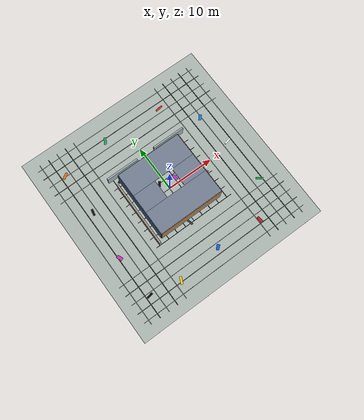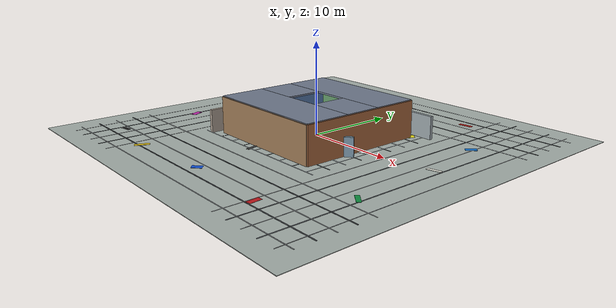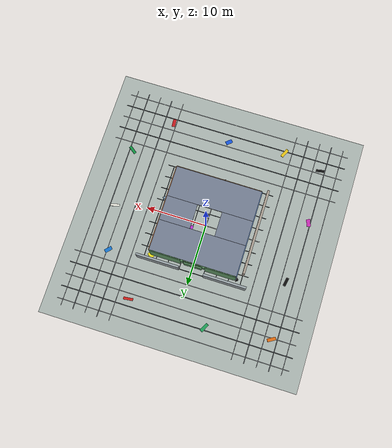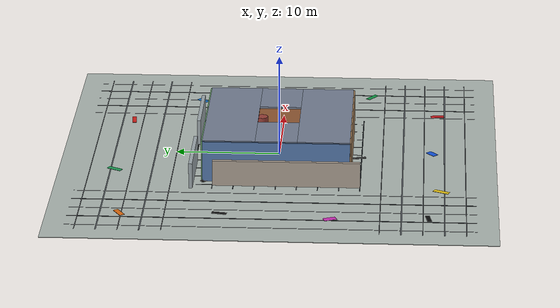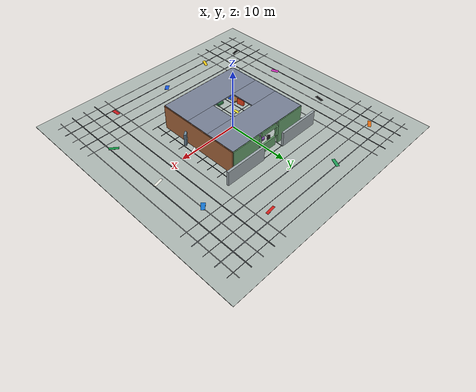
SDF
<sdf version="1.10">
 <world name="low_indoor_apm_rgbd_mid360_window">
  <physics name="apm_1ms_physics" type="ignored">
   <max_step_size>0.001</max_step_size>
   <real_time_factor>1.0</real_time_factor>
  </physics>
  <plugin filename="gz-sim-physics-system" name="gz::sim::systems::Physics"/>
  <plugin filename="gz-sim-air-pressure-system" name="gz::sim::systems::AirPressure"/>
  <plugin filename="gz-sim-sensors-system" name="gz::sim::systems::Sensors">
   <render_engine>ogre2</render_engine>
  </plugin>
  <plugin filename="gz-sim-user-commands-system" name="gz::sim::systems::UserCommands"/>
  <plugin filename="gz-sim-scene-broadcaster-system" name="gz::sim::systems::SceneBroadcaster"/>
  <plugin filename="gz-sim-imu-system" name="gz::sim::systems::Imu"/>
  <plugin filename="gz-sim-navsat-system" name="gz::sim::systems::NavSat"/>
  <scene>
   <ambient>0.55 0.55 0.55 1</ambient>
   <background>0.72 0.78 0.86 1</background>
   <grid>false</grid>
   <shadows>true</shadows>
  </scene>
  <spherical_coordinates>
   <latitude_deg>-35.363262</latitude_deg>
   <longitude_deg>149.165237</longitude_deg>
   <elevation>584</elevation>
   <heading_deg>0</heading_deg>
   <surface_model>EARTH_WGS84</surface_model>
  </spherical_coordinates>
  <light name="sun" type="directional">
   <pose>0 0 20 0 0 0</pose>
   <direction>-0.45 0.25 -0.86</direction>
   <diffuse>0.95 0.92 0.86 1</diffuse>
   <specular>0.35 0.35 0.32 1</specular>
  </light>
  <model name="textured_floor">
   <static>true</static>
   <pose>0 0 -0.025 0 0 0</pose>
   <link name="floor_link">
    <collision name="floor_collision"><geometry><box><size>42 42 0.05</size></box></geometry></collision>
    <visual name="floor_visual">
     <geometry><box><size>42 42 0.05</size></box></geometry>
     <material>
      <ambient>0.68 0.72 0.70 1</ambient>
      <diffuse>0.68 0.72 0.70 1</diffuse>
      <specular>0.08 0.08 0.08 1</specular>
     </material>
    </visual>
   </link>
  </model>
  <model name="visible_floor_pattern">
   <static>true</static>
   <link name="pattern_link">
    <visual name="x_grid_-18">
     <pose>-18 0 0.012 0 0 0</pose>
     <geometry><box><size>0.08 38 0.012</size></box></geometry>
     <material><diffuse>0.06 0.07 0.08 1</diffuse></material>
    </visual>
    <visual name="x_grid_-16">
     <pose>-16 0 0.012 0 0 0</pose>
     <geometry><box><size>0.12 38 0.012</size></box></geometry>
     <material><diffuse>0.34 0.36 0.38 1</diffuse></material>
    </visual>
    <visual name="x_grid_-14">
     <pose>-14 0 0.012 0 0 0</pose>
     <geometry><box><size>0.08 38 0.012</size></box></geometry>
     <material><diffuse>0.06 0.07 0.08 1</diffuse></material>
    </visual>
    <visual name="x_grid_-12">
     <pose>-12 0 0.012 0 0 0</pose>
     <geometry><box><size>0.12 38 0.012</size></box></geometry>
     <material><diffuse>0.34 0.36 0.38 1</diffuse></material>
    </visual>
    <visual name="x_grid_-10">
     <pose>-10 0 0.012 0 0 0</pose>
     <geometry><box><size>0.08 38 0.012</size></box></geometry>
     <material><diffuse>0.06 0.07 0.08 1</diffuse></material>
    </visual>
    <visual name="x_grid_-8">
     <pose>-8 0 0.012 0 0 0</pose>
     <geometry><box><size>0.08 16 0.012</size></box></geometry>
     <material><ambient>0.08 0.10 0.12 1</ambient><diffuse>0.08 0.10 0.12 1</diffuse></material>
    </visual>
    <visual name="x_grid_-6">
     <pose>-6 0 0.012 0 0 0</pose>
     <geometry><box><size>0.08 16 0.012</size></box></geometry>
     <material><ambient>0.28 0.30 0.32 1</ambient><diffuse>0.28 0.30 0.32 1</diffuse></material>
    </visual>
    <visual name="x_grid_-4">
     <pose>-4 0 0.012 0 0 0</pose>
     <geometry><box><size>0.08 16 0.012</size></box></geometry>
     <material><ambient>0.08 0.10 0.12 1</ambient><diffuse>0.08 0.10 0.12 1</diffuse></material>
    </visual>
    <visual name="x_grid_-2">
     <pose>-2 0 0.012 0 0 0</pose>
     <geometry><box><size>0.08 16 0.012</size></box></geometry>
     <material><ambient>0.28 0.30 0.32 1</ambient><diffuse>0.28 0.30 0.32 1</diffuse></material>
    </visual>
    <visual name="x_grid_0">
     <pose>0 0 0.012 0 0 0</pose>
     <geometry><box><size>0.10 16 0.012</size></box></geometry>
     <material><ambient>0.02 0.02 0.02 1</ambient><diffuse>0.02 0.02 0.02 1</diffuse></material>
    </visual>
    <visual name="x_grid_2">
     <pose>2 0 0.012 0 0 0</pose>
     <geometry><box><size>0.08 16 0.012</size></box></geometry>
     <material><ambient>0.28 0.30 0.32 1</ambient><diffuse>0.28 0.30 0.32 1</diffuse></material>
    </visual>
    <visual name="x_grid_4">
     <pose>4 0 0.012 0 0 0</pose>
     <geometry><box><size>0.08 16 0.012</size></box></geometry>
     <material><ambient>0.08 0.10 0.12 1</ambient><diffuse>0.08 0.10 0.12 1</diffuse></material>
    </visual>
    <visual name="x_grid_6">
     <pose>6 0 0.012 0 0 0</pose>
     <geometry><box><size>0.08 16 0.012</size></box></geometry>
     <material><ambient>0.28 0.30 0.32 1</ambient><diffuse>0.28 0.30 0.32 1</diffuse></material>
    </visual>
    <visual name="x_grid_8">
     <pose>8 0 0.012 0 0 0</pose>
     <geometry><box><size>0.08 16 0.012</size></box></geometry>
     <material><ambient>0.08 0.10 0.12 1</ambient><diffuse>0.08 0.10 0.12 1</diffuse></material>
    </visual>
    <visual name="x_grid_10">
     <pose>10 0 0.012 0 0 0</pose>
     <geometry><box><size>0.08 38 0.012</size></box></geometry>
     <material><diffuse>0.06 0.07 0.08 1</diffuse></material>
    </visual>
    <visual name="x_grid_12">
     <pose>12 0 0.012 0 0 0</pose>
     <geometry><box><size>0.12 38 0.012</size></box></geometry>
     <material><diffuse>0.34 0.36 0.38 1</diffuse></material>
    </visual>
    <visual name="x_grid_14">
     <pose>14 0 0.012 0 0 0</pose>
     <geometry><box><size>0.08 38 0.012</size></box></geometry>
     <material><diffuse>0.06 0.07 0.08 1</diffuse></material>
    </visual>
    <visual name="x_grid_16">
     <pose>16 0 0.012 0 0 0</pose>
     <geometry><box><size>0.12 38 0.012</size></box></geometry>
     <material><diffuse>0.34 0.36 0.38 1</diffuse></material>
    </visual>
    <visual name="x_grid_18">
     <pose>18 0 0.012 0 0 0</pose>
     <geometry><box><size>0.08 38 0.012</size></box></geometry>
     <material><diffuse>0.06 0.07 0.08 1</diffuse></material>
    </visual>
    <visual name="y_grid_-18">
     <pose>0 -18 0.014 0 0 0</pose>
     <geometry><box><size>38 0.08 0.012</size></box></geometry>
     <material><diffuse>0.05 0.06 0.07 1</diffuse></material>
    </visual>
    <visual name="y_grid_-16">
     <pose>0 -16 0.014 0 0 0</pose>
     <geometry><box><size>38 0.12 0.012</size></box></geometry>
     <material><diffuse>0.32 0.34 0.36 1</diffuse></material>
    </visual>
    <visual name="y_grid_-14">
     <pose>0 -14 0.014 0 0 0</pose>
     <geometry><box><size>38 0.08 0.012</size></box></geometry>
     <material><diffuse>0.05 0.06 0.07 1</diffuse></material>
    </visual>
    <visual name="y_grid_-12">
     <pose>0 -12 0.014 0 0 0</pose>
     <geometry><box><size>38 0.12 0.012</size></box></geometry>
     <material><diffuse>0.32 0.34 0.36 1</diffuse></material>
    </visual>
    <visual name="y_grid_-10">
     <pose>0 -10 0.014 0 0 0</pose>
     <geometry><box><size>38 0.08 0.012</size></box></geometry>
     <material><diffuse>0.05 0.06 0.07 1</diffuse></material>
    </visual>
    <visual name="y_grid_-8">
     <pose>0 -8 0.014 0 0 0</pose>
     <geometry><box><size>18 0.08 0.012</size></box></geometry>
     <material><ambient>0.08 0.10 0.12 1</ambient><diffuse>0.08 0.10 0.12 1</diffuse></material>
    </visual>
    <visual name="y_grid_-6">
     <pose>0 -6 0.014 0 0 0</pose>
     <geometry><box><size>18 0.08 0.012</size></box></geometry>
     <material><ambient>0.30 0.32 0.34 1</ambient><diffuse>0.30 0.32 0.34 1</diffuse></material>
    </visual>
    <visual name="y_grid_-4">
     <pose>0 -4 0.014 0 0 0</pose>
     <geometry><box><size>18 0.08 0.012</size></box></geometry>
     <material><ambient>0.08 0.10 0.12 1</ambient><diffuse>0.08 0.10 0.12 1</diffuse></material>
    </visual>
    <visual name="y_grid_-2">
     <pose>0 -2 0.014 0 0 0</pose>
     <geometry><box><size>18 0.08 0.012</size></box></geometry>
     <material><ambient>0.30 0.32 0.34 1</ambient><diffuse>0.30 0.32 0.34 1</diffuse></material>
    </visual>
    <visual name="y_grid_0">
     <pose>0 0 0.014 0 0 0</pose>
     <geometry><box><size>18 0.10 0.012</size></box></geometry>
     <material><ambient>0.02 0.02 0.02 1</ambient><diffuse>0.02 0.02 0.02 1</diffuse></material>
    </visual>
    <visual name="y_grid_2">
     <pose>0 2 0.014 0 0 0</pose>
     <geometry><box><size>18 0.08 0.012</size></box></geometry>
     <material><ambient>0.30 0.32 0.34 1</ambient><diffuse>0.30 0.32 0.34 1</diffuse></material>
    </visual>
    <visual name="y_grid_4">
     <pose>0 4 0.014 0 0 0</pose>
     <geometry><box><size>18 0.08 0.012</size></box></geometry>
     <material><ambient>0.08 0.10 0.12 1</ambient><diffuse>0.08 0.10 0.12 1</diffuse></material>
    </visual>
    <visual name="y_grid_6">
     <pose>0 6 0.014 0 0 0</pose>
     <geometry><box><size>18 0.08 0.012</size></box></geometry>
     <material><ambient>0.30 0.32 0.34 1</ambient><diffuse>0.30 0.32 0.34 1</diffuse></material>
    </visual>
    <visual name="y_grid_8">
     <pose>0 8 0.014 0 0 0</pose>
     <geometry><box><size>18 0.08 0.012</size></box></geometry>
     <material><ambient>0.08 0.10 0.12 1</ambient><diffuse>0.08 0.10 0.12 1</diffuse></material>
    </visual>
    <visual name="y_grid_10">
     <pose>0 10 0.014 0 0 0</pose>
     <geometry><box><size>38 0.08 0.012</size></box></geometry>
     <material><diffuse>0.05 0.06 0.07 1</diffuse></material>
    </visual>
    <visual name="y_grid_12">
     <pose>0 12 0.014 0 0 0</pose>
     <geometry><box><size>38 0.12 0.012</size></box></geometry>
     <material><diffuse>0.32 0.34 0.36 1</diffuse></material>
    </visual>
    <visual name="y_grid_14">
     <pose>0 14 0.014 0 0 0</pose>
     <geometry><box><size>38 0.08 0.012</size></box></geometry>
     <material><diffuse>0.05 0.06 0.07 1</diffuse></material>
    </visual>
    <visual name="y_grid_16">
     <pose>0 16 0.014 0 0 0</pose>
     <geometry><box><size>38 0.12 0.012</size></box></geometry>
     <material><diffuse>0.32 0.34 0.36 1</diffuse></material>
    </visual>
    <visual name="y_grid_18">
     <pose>0 18 0.014 0 0 0</pose>
     <geometry><box><size>38 0.08 0.012</size></box></geometry>
     <material><diffuse>0.05 0.06 0.07 1</diffuse></material>
    </visual>
    <visual name="blue_patch">
     <pose>-5.2 -5.2 0.022 0 0 0.22</pose>
     <geometry><box><size>1.4 0.9 0.014</size></box></geometry>
     <material><ambient>0.05 0.28 0.85 1</ambient><diffuse>0.05 0.28 0.85 1</diffuse></material>
    </visual>
    <visual name="yellow_patch">
     <pose>3.7 -4.8 0.022 0 0 -0.32</pose>
     <geometry><box><size>1.2 1.1 0.014</size></box></geometry>
     <material><ambient>0.95 0.82 0.08 1</ambient><diffuse>0.95 0.82 0.08 1</diffuse></material>
    </visual>
    <visual name="red_patch">
     <pose>-3.0 3.4 0.022 0 0 0.65</pose>
     <geometry><box><size>1.0 1.5 0.014</size></box></geometry>
     <material><ambient>0.82 0.10 0.08 1</ambient><diffuse>0.82 0.10 0.08 1</diffuse></material>
    </visual>
    <visual name="green_patch">
     <pose>5.3 3.1 0.022 0 0 0.4</pose>
     <geometry><box><size>1.6 0.8 0.014</size></box></geometry>
     <material><ambient>0.05 0.58 0.22 1</ambient><diffuse>0.05 0.58 0.22 1</diffuse></material>
    </visual>
   </link>
  </model>
  <model name="range_facet_ground_relief">
   <static>true</static>
   <link name="relief_link">
    <collision name="relief_0">
     <pose>-5.0 -4.5 0.12 0 0 0.2</pose>
     <geometry><cylinder><radius>0.65</radius><length>0.24</length></cylinder></geometry>
    </collision>
    <visual name="relief_0_v">
     <pose>-5.0 -4.5 0.12 0 0 0.2</pose>
     <geometry><cylinder><radius>0.65</radius><length>0.24</length></cylinder></geometry>
     <material><ambient>0.42 0.30 0.18 1</ambient><diffuse>0.55 0.38 0.20 1</diffuse></material>
    </visual>
    <collision name="relief_1">
     <pose>-2.5 -5.5 0.17 0 0 0.0</pose>
     <geometry><box><size>1.1 0.8 0.34</size></box></geometry>
    </collision>
    <visual name="relief_1_v">
     <pose>-2.5 -5.5 0.17 0 0 0.0</pose>
     <geometry><box><size>1.1 0.8 0.34</size></box></geometry>
     <material><ambient>0.16 0.38 0.25 1</ambient><diffuse>0.20 0.52 0.30 1</diffuse></material>
    </visual>
    <collision name="relief_2">
     <pose>1.8 -4.2 0.09 0 0 0.35</pose>
     <geometry><box><size>1.4 0.7 0.18</size></box></geometry>
    </collision>
    <visual name="relief_2_v">
     <pose>1.8 -4.2 0.09 0 0 0.35</pose>
     <geometry><box><size>1.4 0.7 0.18</size></box></geometry>
     <material><ambient>0.20 0.24 0.48 1</ambient><diffuse>0.28 0.32 0.68 1</diffuse></material>
    </visual>
    <collision name="relief_3">
     <pose>4.5 -2.3 0.14 0 0 -0.2</pose>
     <geometry><cylinder><radius>0.45</radius><length>0.28</length></cylinder></geometry>
    </collision>
    <visual name="relief_3_v">
     <pose>4.5 -2.3 0.14 0 0 -0.2</pose>
     <geometry><cylinder><radius>0.45</radius><length>0.28</length></cylinder></geometry>
     <material><ambient>0.48 0.20 0.18 1</ambient><diffuse>0.68 0.28 0.22 1</diffuse></material>
    </visual>
    <collision name="relief_4">
     <pose>-4.3 2.0 0.15 0 0 0.5</pose>
     <geometry><box><size>1.0 1.0 0.30</size></box></geometry>
    </collision>
    <visual name="relief_4_v">
     <pose>-4.3 2.0 0.15 0 0 0.5</pose>
     <geometry><box><size>1.0 1.0 0.30</size></box></geometry>
     <material><ambient>0.46 0.36 0.12 1</ambient><diffuse>0.62 0.48 0.15 1</diffuse></material>
    </visual>
    <collision name="relief_5">
     <pose>-1.0 4.8 0.11 0 0 0.1</pose>
     <geometry><cylinder><radius>0.55</radius><length>0.22</length></cylinder></geometry>
    </collision>
    <visual name="relief_5_v">
     <pose>-1.0 4.8 0.11 0 0 0.1</pose>
     <geometry><cylinder><radius>0.55</radius><length>0.22</length></cylinder></geometry>
     <material><ambient>0.30 0.18 0.42 1</ambient><diffuse>0.42 0.25 0.58 1</diffuse></material>
    </visual>
    <collision name="relief_6">
     <pose>2.8 4.4 0.19 0 0 -0.4</pose>
     <geometry><box><size>1.2 0.8 0.38</size></box></geometry>
    </collision>
    <visual name="relief_6_v">
     <pose>2.8 4.4 0.19 0 0 -0.4</pose>
     <geometry><box><size>1.2 0.8 0.38</size></box></geometry>
     <material><ambient>0.10 0.38 0.42 1</ambient><diffuse>0.14 0.55 0.60 1</diffuse></material>
    </visual>
    <collision name="relief_7">
     <pose>5.8 1.4 0.13 0 0 0.25</pose>
     <geometry><cylinder><radius>0.50</radius><length>0.26</length></cylinder></geometry>
    </collision>
    <visual name="relief_7_v">
     <pose>5.8 1.4 0.13 0 0 0.25</pose>
     <geometry><cylinder><radius>0.50</radius><length>0.26</length></cylinder></geometry>
     <material><ambient>0.42 0.26 0.10 1</ambient><diffuse>0.60 0.36 0.12 1</diffuse></material>
    </visual>
    <collision name="relief_8">
     <pose>-6.2 5.6 0.16 0 0 0.18</pose>
     <geometry><cylinder><radius>0.58</radius><length>0.32</length></cylinder></geometry>
    </collision>
    <visual name="relief_8_v">
     <pose>-6.2 5.6 0.16 0 0 0.18</pose>
     <geometry><cylinder><radius>0.58</radius><length>0.32</length></cylinder></geometry>
     <material><ambient>0.22 0.42 0.32 1</ambient><diffuse>0.30 0.60 0.42 1</diffuse></material>
    </visual>
    <collision name="relief_9">
     <pose>6.1 5.8 0.20 0 0 -0.28</pose>
     <geometry><box><size>1.3 0.9 0.40</size></box></geometry>
    </collision>
    <visual name="relief_9_v">
     <pose>6.1 5.8 0.20 0 0 -0.28</pose>
     <geometry><box><size>1.3 0.9 0.40</size></box></geometry>
     <material><ambient>0.46 0.28 0.16 1</ambient><diffuse>0.68 0.40 0.22 1</diffuse></material>
    </visual>
   </link>
  </model>
  <model name="walls_and_obstacles">
   <static>true</static>
   <link name="link">
    <collision name="north_wall_west">
     <pose>-5.5 8 1.25 0 0 0</pose>
     <geometry><box><size>7 0.35 2.5</size></box></geometry>
    </collision>
    <visual name="north_wall_west_v">
     <pose>-5.5 8 1.25 0 0 0</pose>
     <geometry><box><size>7 0.35 2.5</size></box></geometry>
     <material><diffuse>0.62 0.66 0.68 1</diffuse></material>
    </visual>
    <collision name="north_wall_east">
     <pose>5.5 8 1.25 0 0 0</pose>
     <geometry><box><size>7 0.35 2.5</size></box></geometry>
    </collision>
    <visual name="north_wall_east_v">
     <pose>5.5 8 1.25 0 0 0</pose>
     <geometry><box><size>7 0.35 2.5</size></box></geometry>
     <material><diffuse>0.62 0.66 0.68 1</diffuse></material>
    </visual>
    <collision name="west_wall">
     <pose>-8 -1 1.25 0 0 0</pose>
     <geometry><box><size>0.35 14 2.5</size></box></geometry>
    </collision>
    <visual name="west_wall_v">
     <pose>-8 -1 1.25 0 0 0</pose>
     <geometry><box><size>0.35 14 2.5</size></box></geometry>
     <material><diffuse>0.68 0.63 0.58 1</diffuse></material>
    </visual>
    <collision name="short_wall">
     <pose>5 -4 1.0 0 0 0.65</pose>
     <geometry><box><size>7 0.35 2.0</size></box></geometry>
    </collision>
    <visual name="short_wall_v">
     <pose>5 -4 1.0 0 0 0.65</pose>
     <geometry><box><size>7 0.35 2.0</size></box></geometry>
     <material><diffuse>0.45 0.55 0.62 1</diffuse></material>
    </visual>
    <collision name="box_1">
     <pose>-3.5 3.2 0.6 0 0 0.25</pose>
     <geometry><box><size>1.8 1.2 1.2</size></box></geometry>
    </collision>
    <visual name="box_1_v">
     <pose>-3.5 3.2 0.6 0 0 0.25</pose>
     <geometry><box><size>1.8 1.2 1.2</size></box></geometry>
     <material><diffuse>0.55 0.45 0.35 1</diffuse></material>
    </visual>
    <collision name="box_2">
     <pose>3.2 4.8 0.85 0 0 -0.3</pose>
     <geometry><box><size>1.2 2.0 1.7</size></box></geometry>
    </collision>
    <visual name="box_2_v">
     <pose>3.2 4.8 0.85 0 0 -0.3</pose>
     <geometry><box><size>1.2 2.0 1.7</size></box></geometry>
     <material><diffuse>0.35 0.48 0.5 1</diffuse></material>
    </visual>
    <collision name="cylinder">
     <pose>6 2 0.75 0 0 0</pose>
     <geometry><cylinder><radius>0.55</radius><length>1.5</length></cylinder></geometry>
    </collision>
    <visual name="cylinder_v">
     <pose>6 2 0.75 0 0 0</pose>
     <geometry><cylinder><radius>0.55</radius><length>1.5</length></cylinder></geometry>
     <material><diffuse>0.6 0.25 0.22 1</diffuse></material>
    </visual>
   </link>
  </model>
  <model name="flow_floor_markers">
   <static>true</static>
   <link name="markers_link">
    <visual name="marker_0">
     <pose>-5.80 -5.00 0.035 0 0 0.000</pose>
     <geometry><box><size>0.90 0.45 0.025</size></box></geometry>
     <material><ambient>0.02 0.02 0.02 1.0</ambient><diffuse>0.02 0.02 0.02 1.0</diffuse></material>
    </visual>
    <visual name="marker_1">
     <pose>-2.40 -6.20 0.035 0 0 0.230</pose>
     <geometry><box><size>0.55 1.10 0.025</size></box></geometry>
     <material><ambient>0.05 0.05 0.05 1.0</ambient><diffuse>0.05 0.05 0.05 1.0</diffuse></material>
    </visual>
    <visual name="marker_2">
     <pose>1.20 -5.50 0.035 0 0 0.460</pose>
     <geometry><box><size>1.10 0.40 0.025</size></box></geometry>
     <material><ambient>0.90 0.90 0.82 1.0</ambient><diffuse>0.90 0.90 0.82 1.0</diffuse></material>
    </visual>
    <visual name="marker_3">
     <pose>5.50 -6.00 0.035 0 0 0.690</pose>
     <geometry><box><size>0.70 0.80 0.025</size></box></geometry>
     <material><ambient>0.10 0.35 0.65 1.0</ambient><diffuse>0.10 0.35 0.65 1.0</diffuse></material>
    </visual>
    <visual name="marker_4">
     <pose>-6.40 -1.80 0.035 0 0 0.920</pose>
     <geometry><box><size>1.20 0.35 0.025</size></box></geometry>
     <material><ambient>0.86 0.15 0.12 1.0</ambient><diffuse>0.86 0.15 0.12 1.0</diffuse></material>
    </visual>
    <visual name="marker_5">
     <pose>-3.00 -2.20 0.035 0 0 0.000</pose>
     <geometry><box><size>0.45 0.95 0.025</size></box></geometry>
     <material><ambient>0.95 0.90 0.20 1.0</ambient><diffuse>0.95 0.90 0.20 1.0</diffuse></material>
    </visual>
    <visual name="marker_6">
     <pose>0.40 -1.60 0.035 0 0 0.230</pose>
     <geometry><box><size>0.80 0.65 0.025</size></box></geometry>
     <material><ambient>0.03 0.03 0.03 1.0</ambient><diffuse>0.03 0.03 0.03 1.0</diffuse></material>
    </visual>
    <visual name="marker_7">
     <pose>4.00 -2.10 0.035 0 0 0.460</pose>
     <geometry><box><size>1.00 0.45 0.025</size></box></geometry>
     <material><ambient>0.15 0.60 0.28 1.0</ambient><diffuse>0.15 0.60 0.28 1.0</diffuse></material>
    </visual>
    <visual name="marker_8">
     <pose>-5.00 1.40 0.035 0 0 0.690</pose>
     <geometry><box><size>0.60 1.00 0.025</size></box></geometry>
     <material><ambient>0.92 0.92 0.92 1.0</ambient><diffuse>0.92 0.92 0.92 1.0</diffuse></material>
    </visual>
    <visual name="marker_9">
     <pose>-1.10 1.90 0.035 0 0 0.920</pose>
     <geometry><box><size>1.20 0.50 0.025</size></box></geometry>
     <material><ambient>0.02 0.02 0.02 1.0</ambient><diffuse>0.02 0.02 0.02 1.0</diffuse></material>
    </visual>
    <visual name="marker_10">
     <pose>2.20 1.20 0.035 0 0 0.000</pose>
     <geometry><box><size>0.55 1.15 0.025</size></box></geometry>
     <material><ambient>0.75 0.20 0.85 1.0</ambient><diffuse>0.75 0.20 0.85 1.0</diffuse></material>
    </visual>
    <visual name="marker_11">
     <pose>6.10 1.70 0.035 0 0 0.230</pose>
     <geometry><box><size>0.95 0.50 0.025</size></box></geometry>
     <material><ambient>0.85 0.55 0.08 1.0</ambient><diffuse>0.85 0.55 0.08 1.0</diffuse></material>
    </visual>
    <visual name="marker_12">
     <pose>-6.00 5.30 0.035 0 0 0.460</pose>
     <geometry><box><size>0.85 0.65 0.025</size></box></geometry>
     <material><ambient>0.12 0.45 0.90 1.0</ambient><diffuse>0.12 0.45 0.90 1.0</diffuse></material>
    </visual>
    <visual name="marker_13">
     <pose>-2.00 5.40 0.035 0 0 0.690</pose>
     <geometry><box><size>1.05 0.45 0.025</size></box></geometry>
     <material><ambient>0.05 0.05 0.05 1.0</ambient><diffuse>0.05 0.05 0.05 1.0</diffuse></material>
    </visual>
    <visual name="marker_14">
     <pose>1.70 5.90 0.035 0 0 0.920</pose>
     <geometry><box><size>0.50 1.00 0.025</size></box></geometry>
     <material><ambient>0.95 0.95 0.88 1.0</ambient><diffuse>0.95 0.95 0.88 1.0</diffuse></material>
    </visual>
    <visual name="marker_15">
     <pose>5.60 5.00 0.035 0 0 0.000</pose>
     <geometry><box><size>1.25 0.40 0.025</size></box></geometry>
     <material><ambient>0.55 0.15 0.12 1.0</ambient><diffuse>0.55 0.15 0.12 1.0</diffuse></material>
    </visual>
    <visual name="marker_16">
     <pose>-0.80 -7.70 0.035 0 0 0.230</pose>
     <geometry><box><size>0.35 1.40 0.025</size></box></geometry>
     <material><ambient>0.25 0.25 0.25 1.0</ambient><diffuse>0.25 0.25 0.25 1.0</diffuse></material>
    </visual>
    <visual name="marker_17">
     <pose>7.50 -0.40 0.035 0 0 0.460</pose>
     <geometry><box><size>1.40 0.35 0.025</size></box></geometry>
     <material><ambient>0.93 0.93 0.93 1.0</ambient><diffuse>0.93 0.93 0.93 1.0</diffuse></material>
    </visual>
    <visual name="marker_18">
     <pose>-7.20 6.90 0.035 0 0 0.690</pose>
     <geometry><box><size>0.50 0.50 0.025</size></box></geometry>
     <material><ambient>0.02 0.02 0.02 1.0</ambient><diffuse>0.02 0.02 0.02 1.0</diffuse></material>
    </visual>
    <visual name="marker_19">
     <pose>7.00 7.20 0.035 0 0 0.920</pose>
     <geometry><box><size>0.65 0.95 0.025</size></box></geometry>
     <material><ambient>0.95 0.90 0.10 1.0</ambient><diffuse>0.95 0.90 0.10 1.0</diffuse></material>
    </visual>
    <visual name="marker_20">
     <pose>-15.2 -14.5 0.035 0 0 0.18</pose>
     <geometry><box><size>1.35 0.42 0.025</size></box></geometry>
     <material><diffuse>0.04 0.04 0.04 1</diffuse></material>
    </visual>
    <visual name="marker_21">
     <pose>-8.8 -15.7 0.035 0 0 -0.42</pose>
     <geometry><box><size>0.48 1.55 0.025</size></box></geometry>
     <material><diffuse>0.92 0.78 0.08 1</diffuse></material>
    </visual>
    <visual name="marker_22">
     <pose>0.6 -14.8 0.035 0 0 0.72</pose>
     <geometry><box><size>1.10 0.62 0.025</size></box></geometry>
     <material><diffuse>0.08 0.34 0.88 1</diffuse></material>
    </visual>
    <visual name="marker_23">
     <pose>10.4 -15.3 0.035 0 0 0.08</pose>
     <geometry><box><size>0.55 1.30 0.025</size></box></geometry>
     <material><diffuse>0.78 0.10 0.12 1</diffuse></material>
    </visual>
    <visual name="marker_24">
     <pose>15.5 -8.7 0.035 0 0 -0.65</pose>
     <geometry><box><size>1.45 0.45 0.025</size></box></geometry>
     <material><diffuse>0.06 0.58 0.26 1</diffuse></material>
    </visual>
    <visual name="marker_25">
     <pose>-15.7 -5.4 0.035 0 0 0.38</pose>
     <geometry><box><size>0.62 1.22 0.025</size></box></geometry>
     <material><diffuse>0.80 0.18 0.72 1</diffuse></material>
    </visual>
    <visual name="marker_26">
     <pose>15.2 1.1 0.035 0 0 0.24</pose>
     <geometry><box><size>1.52 0.38 0.025</size></box></geometry>
     <material><diffuse>0.92 0.92 0.88 1</diffuse></material>
    </visual>
    <visual name="marker_27">
     <pose>-14.8 4.9 0.035 0 0 -0.18</pose>
     <geometry><box><size>0.44 1.42 0.025</size></box></geometry>
     <material><diffuse>0.05 0.05 0.05 1</diffuse></material>
    </visual>
    <visual name="marker_28">
     <pose>13.8 8.4 0.035 0 0 0.82</pose>
     <geometry><box><size>1.20 0.58 0.025</size></box></geometry>
     <material><diffuse>0.08 0.46 0.82 1</diffuse></material>
    </visual>
    <visual name="marker_29">
     <pose>-15.1 14.2 0.035 0 0 0.55</pose>
     <geometry><box><size>1.38 0.50 0.025</size></box></geometry>
     <material><diffuse>0.88 0.42 0.06 1</diffuse></material>
    </visual>
    <visual name="marker_30">
     <pose>-4.6 15.6 0.035 0 0 -0.48</pose>
     <geometry><box><size>0.50 1.48 0.025</size></box></geometry>
     <material><diffuse>0.12 0.62 0.34 1</diffuse></material>
    </visual>
    <visual name="marker_31">
     <pose>8.2 14.9 0.035 0 0 0.12</pose>
     <geometry><box><size>1.55 0.40 0.025</size></box></geometry>
     <material><diffuse>0.82 0.12 0.10 1</diffuse></material>
    </visual>
   </link>
  </model>
  <model name="low_indoor_room_window_opening">
   <static>true</static>
   <link name="room_geometry">
    <collision name="west_wall">
     <pose>-7.0 0 2.0 0 0 0</pose>
     <geometry><box><size>0.25 14.0 4.0</size></box></geometry>
    </collision>
    <visual name="west_wall_visual">
     <pose>-7.0 0 2.0 0 0 0</pose>
     <geometry><box><size>0.25 14.0 4.0</size></box></geometry>
     <material><ambient>0.22 0.30 0.42 1</ambient><diffuse>0.34 0.48 0.68 1</diffuse></material>
    </visual>
    <collision name="east_wall">
     <pose>7.0 0 2.0 0 0 0</pose>
     <geometry><box><size>0.25 14.0 4.0</size></box></geometry>
    </collision>
    <visual name="east_wall_visual">
     <pose>7.0 0 2.0 0 0 0</pose>
     <geometry><box><size>0.25 14.0 4.0</size></box></geometry>
     <material><ambient>0.42 0.27 0.18 1</ambient><diffuse>0.68 0.42 0.25 1</diffuse></material>
    </visual>
    <collision name="north_wall_west">
     <pose>-4.5 7.0 2.0 0 0 0</pose>
     <geometry><box><size>5.0 0.25 4.0</size></box></geometry>
    </collision>
    <visual name="north_wall_west_visual">
     <pose>-4.5 7.0 2.0 0 0 0</pose>
     <geometry><box><size>5.0 0.25 4.0</size></box></geometry>
     <material><ambient>0.28 0.40 0.28 1</ambient><diffuse>0.40 0.62 0.42 1</diffuse></material>
    </visual>
    <collision name="north_wall_east">
     <pose>4.5 7.0 2.0 0 0 0</pose>
     <geometry><box><size>5.0 0.25 4.0</size></box></geometry>
    </collision>
    <visual name="north_wall_east_visual">
     <pose>4.5 7.0 2.0 0 0 0</pose>
     <geometry><box><size>5.0 0.25 4.0</size></box></geometry>
     <material><ambient>0.28 0.40 0.28 1</ambient><diffuse>0.40 0.62 0.42 1</diffuse></material>
    </visual>
    <collision name="north_window_sill">
     <pose>0 7.0 0.8 0 0 0</pose>
     <geometry><box><size>3.0 0.25 1.6</size></box></geometry>
    </collision>
    <visual name="north_window_sill_visual">
     <pose>0 7.0 0.8 0 0 0</pose>
     <geometry><box><size>3.0 0.25 1.6</size></box></geometry>
     <material><ambient>0.28 0.40 0.28 1</ambient><diffuse>0.40 0.62 0.42 1</diffuse></material>
    </visual>
    <collision name="north_window_header">
     <pose>0 7.0 3.6 0 0 0</pose>
     <geometry><box><size>3.0 0.25 0.8</size></box></geometry>
    </collision>
    <visual name="north_window_header_visual">
     <pose>0 7.0 3.6 0 0 0</pose>
     <geometry><box><size>3.0 0.25 0.8</size></box></geometry>
     <material><ambient>0.28 0.40 0.28 1</ambient><diffuse>0.40 0.62 0.42 1</diffuse></material>
    </visual>
    <collision name="north_window_jamb_west">
     <pose>-1.75 7.0 2.4 0 0 0</pose>
     <geometry><box><size>0.5 0.25 1.6</size></box></geometry>
    </collision>
    <visual name="north_window_jamb_west_visual">
     <pose>-1.75 7.0 2.4 0 0 0</pose>
     <geometry><box><size>0.5 0.25 1.6</size></box></geometry>
     <material><ambient>0.28 0.40 0.28 1</ambient><diffuse>0.40 0.62 0.42 1</diffuse></material>
    </visual>
    <collision name="north_window_jamb_east">
     <pose>1.75 7.0 2.4 0 0 0</pose>
     <geometry><box><size>0.5 0.25 1.6</size></box></geometry>
    </collision>
    <visual name="north_window_jamb_east_visual">
     <pose>1.75 7.0 2.4 0 0 0</pose>
     <geometry><box><size>0.5 0.25 1.6</size></box></geometry>
     <material><ambient>0.28 0.40 0.28 1</ambient><diffuse>0.40 0.62 0.42 1</diffuse></material>
    </visual>
    <collision name="south_wall">
     <pose>0 -7.0 2.0 0 0 0</pose>
     <geometry><box><size>14.0 0.25 4.0</size></box></geometry>
    </collision>
    <visual name="south_wall_visual">
     <pose>0 -7.0 2.0 0 0 0</pose>
     <geometry><box><size>14.0 0.25 4.0</size></box></geometry>
     <material><ambient>0.38 0.30 0.22 1</ambient><diffuse>0.62 0.48 0.34 1</diffuse></material>
    </visual>
    <collision name="ceiling_north">
     <pose>0 4.5 4.0 0 0 0</pose>
     <geometry><box><size>14.0 5.0 0.18</size></box></geometry>
    </collision>
    <visual name="ceiling_north_visual">
     <pose>0 4.5 4.0 0 0 0</pose>
     <geometry><box><size>14.0 5.0 0.18</size></box></geometry>
     <material><ambient>0.30 0.32 0.36 1</ambient><diffuse>0.46 0.50 0.58 1</diffuse></material>
    </visual>
    <collision name="ceiling_south">
     <pose>0 -4.5 4.0 0 0 0</pose>
     <geometry><box><size>14.0 5.0 0.18</size></box></geometry>
    </collision>
    <visual name="ceiling_south_visual">
     <pose>0 -4.5 4.0 0 0 0</pose>
     <geometry><box><size>14.0 5.0 0.18</size></box></geometry>
     <material><ambient>0.30 0.32 0.36 1</ambient><diffuse>0.46 0.50 0.58 1</diffuse></material>
    </visual>
    <collision name="ceiling_west">
     <pose>-4.5 0 4.0 0 0 0</pose>
     <geometry><box><size>5.0 4.0 0.18</size></box></geometry>
    </collision>
    <visual name="ceiling_west_visual">
     <pose>-4.5 0 4.0 0 0 0</pose>
     <geometry><box><size>5.0 4.0 0.18</size></box></geometry>
     <material><ambient>0.30 0.32 0.36 1</ambient><diffuse>0.46 0.50 0.58 1</diffuse></material>
    </visual>
    <collision name="ceiling_east">
     <pose>4.5 0 4.0 0 0 0</pose>
     <geometry><box><size>5.0 4.0 0.18</size></box></geometry>
    </collision>
    <visual name="ceiling_east_visual">
     <pose>4.5 0 4.0 0 0 0</pose>
     <geometry><box><size>5.0 4.0 0.18</size></box></geometry>
     <material><ambient>0.30 0.32 0.36 1</ambient><diffuse>0.46 0.50 0.58 1</diffuse></material>
    </visual>
    <collision name="relief_a">
     <pose>-4.8 -3.0 0.55 0 0 0.18</pose>
     <geometry><box><size>0.35 1.2 1.1</size></box></geometry>
    </collision>
    <visual name="relief_a_visual">
     <pose>-4.8 -3.0 0.55 0 0 0.18</pose>
     <geometry><box><size>0.35 1.2 1.1</size></box></geometry>
     <material><ambient>0.88 0.18 0.08 1</ambient><diffuse>0.96 0.28 0.12 1</diffuse></material>
    </visual>
    <collision name="relief_b">
     <pose>4.7 2.8 0.85 0 0 -0.30</pose>
     <geometry><box><size>0.55 0.8 1.7</size></box></geometry>
    </collision>
    <visual name="relief_b_visual">
     <pose>4.7 2.8 0.85 0 0 -0.30</pose>
     <geometry><box><size>0.55 0.8 1.7</size></box></geometry>
     <material><ambient>0.08 0.38 0.82 1</ambient><diffuse>0.10 0.52 0.94 1</diffuse></material>
    </visual>
   </link>
  </model>
 </world>
</sdf>
